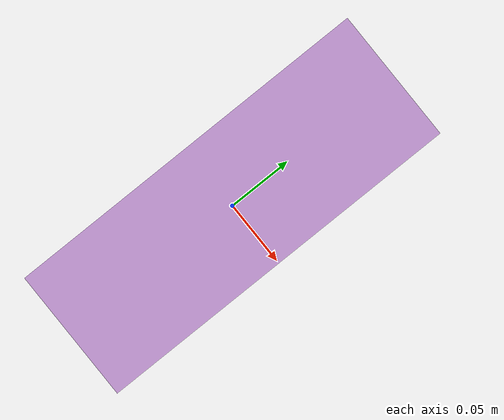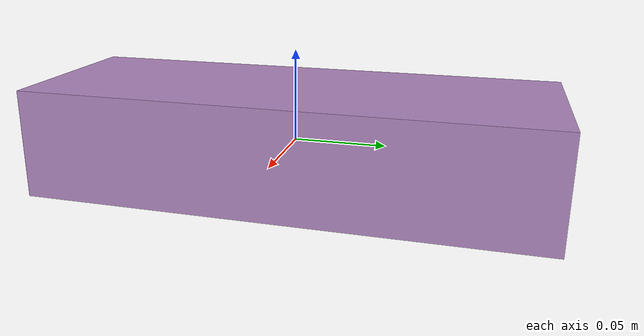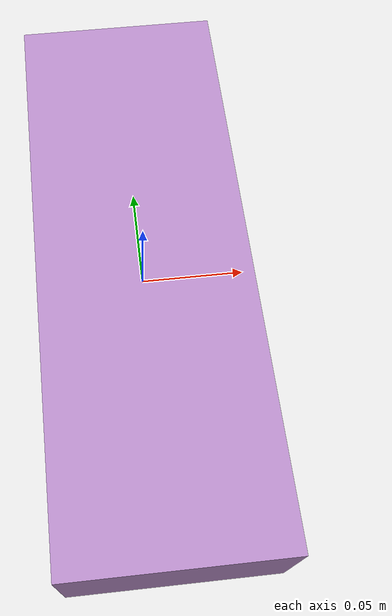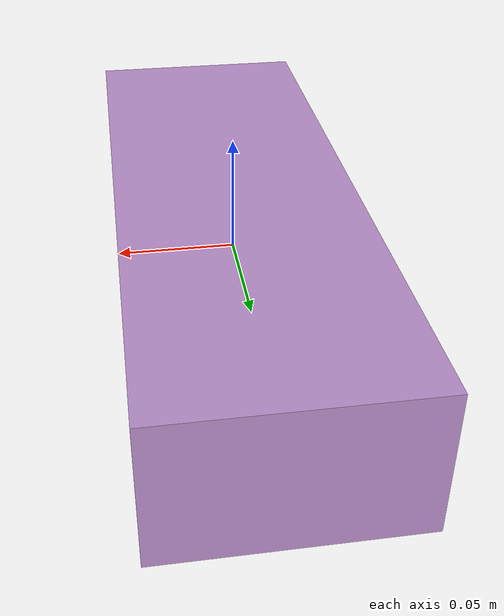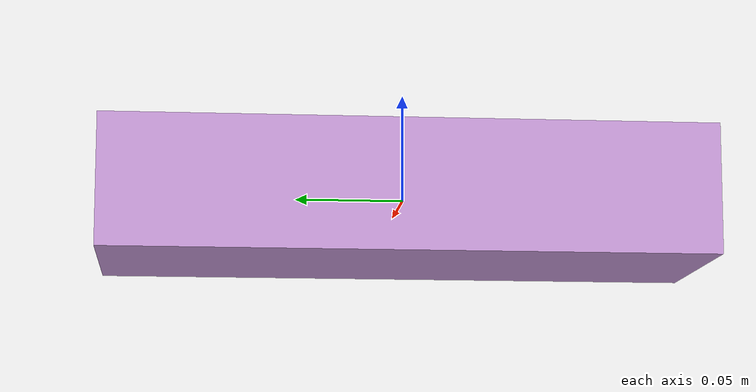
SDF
<?xml version="1.0"?>
<sdf version="1.7">
  <model name="block9">
    <pose> 0 0 0 0 0 0 </pose>
    <link name="block9_link">
      <inertial>
        <mass>1</mass>
        <inertia>
          <ixx>0.1287370924546005</ixx>
          <ixy>0.0</ixy>
          <ixz>0.0</ixz>
          <iyy>0.13658351124562848</iyy>
          <iyz>0.0</iyz>
          <izz>0.12454162032968559</izz>
        </inertia>
      </inertial>
      <collision name="collision">
        <geometry>
          <box>
            <size> 0.1 0.28 0.06 </size>
          </box>
        </geometry>
      </collision>
      <visual name="visual">
        <geometry>
          <box>
            <size> 0.1 0.28 0.06 </size>
          </box>
        </geometry>
        <material>
          <diffuse>0.7725490196078432 0.596078431372549 0.8392156862745098 1.0</diffuse>
        </material>
      </visual>
    </link>
  </model>
</sdf>
